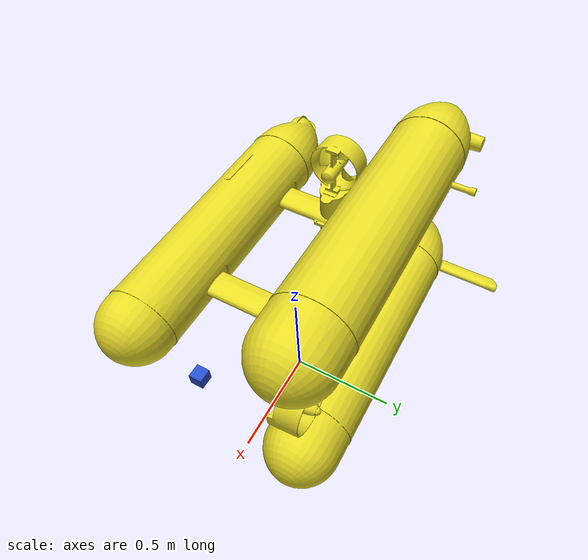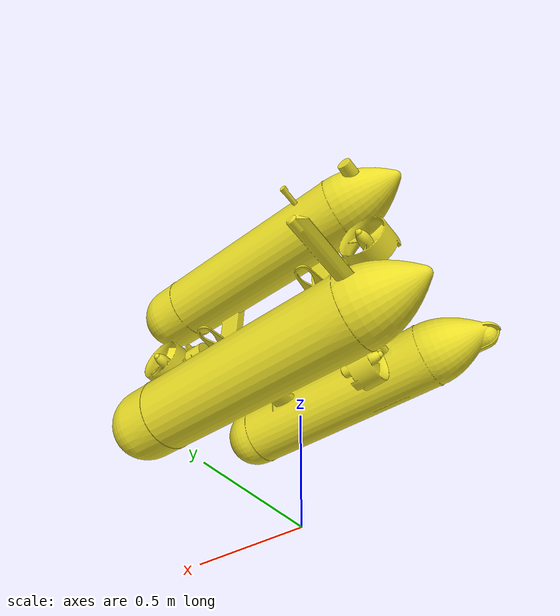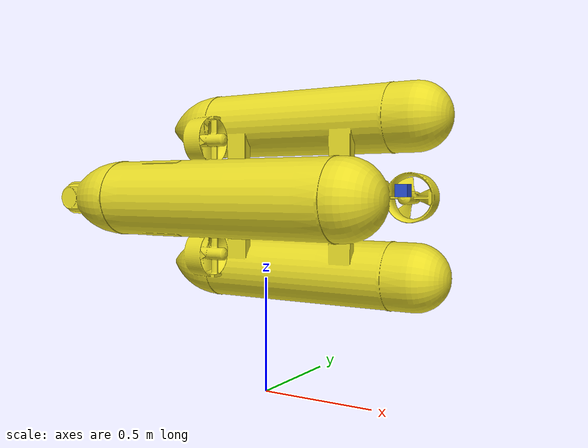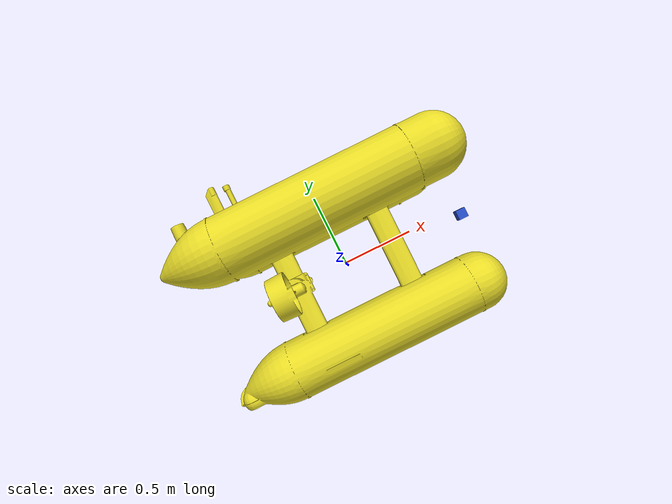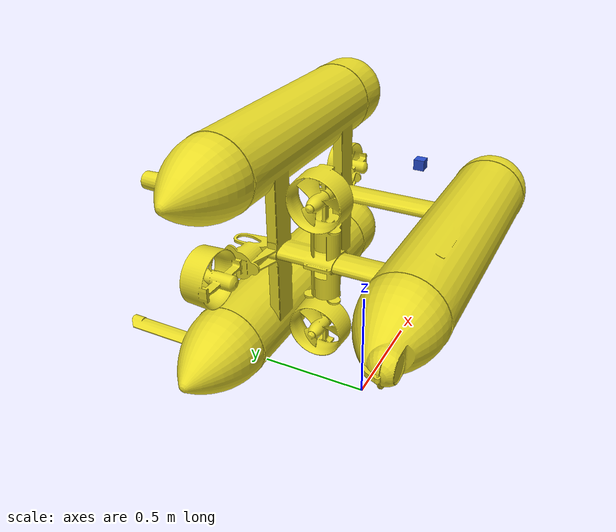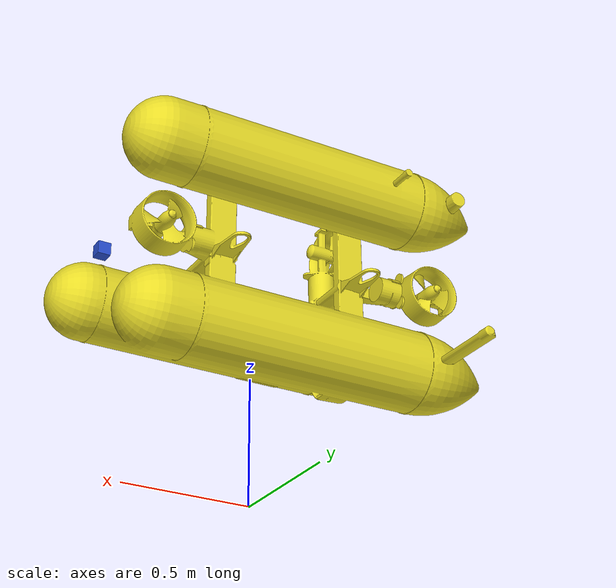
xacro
<?xml version="1.0"?>

<robot name="drone" xmlns:xacro="http://ros.org/wiki/xacro">

	<xacro:include filename="$(find import_duck_gazebo)/urdf/wheel.urdf.xacro" />

  <property name="M_PI" value="3.1415926535897931" />
  <property name="M_PI_2" value="1.570796327" />
  <property name="DEG_TO_RAD" value="0.017453293" />

  <!-- Main body radius and height -->
  <!-- Main Body Cylinder base   -->
  <property name="base_height" value="0.02" />
  <property name="base_radius" value="0.15" />

  <!-- Hokuyo Laser scanner -->
  <property name="hokuyo_size" value="0.05" />

  <!-- Macro for calculating inertia of cylinder -->
  <macro name="cylinder_inertia" params="m r h">
    <inertia  ixx="${m*(3*r*r+h*h)/12}" ixy = "0" ixz = "0"
              iyy="${m*(3*r*r+h*h)/12}" iyz = "0"
              izz="${m*r*r/2}" />
  </macro>

  <link name="base_footprint">
    <inertial>
      <mass value="0.0001" />
      <origin xyz="0 0 0" />
      <inertia ixx="0.0001" ixy="0.0" ixz="0.0"
          iyy="0.0001" iyz="0.0"
          izz="0.0001" />
    </inertial>
    <visual>
        <origin xyz="0 0 0" rpy="0 0 0" />
        <geometry>
            <box size="0.001 0.001 0.001" />
        </geometry>
    </visual>
  </link>

  <gazebo reference="base_footprint">
    <turnGravityOff>false</turnGravityOff>
  </gazebo>

  <joint name="base_footprint_joint" type="fixed">
    <origin xyz="0 0 ${wheel_radius - base_z_origin_to_wheel_origin}" rpy="0 0 0" />
    <parent link="base_footprint"/>
    <child link="drone_link" />
  </joint>

<!-- Girona 500 link -->

	<link name="drone_link">
		<inertial>
			<mass value="2" />
			<origin xyz="0 0 0" />
			<inertia ixx="0.01152" ixy="0.0" ixz="0.0" iyy="0.01152" iyz="0.0" izz="0.0218" />
		</inertial>

		<visual>
			<origin xyz="0 0 0.5" rpy="${M_PI} 0 0" />
			<geometry>
	  		<mesh filename="package://import_duck_gazebo/meshes/girona500.dae"/>
			</geometry>
		</visual>

		<collision>
			<origin xyz="0 0 0" rpy="${M_PI + M_PI/6 - M_PI/36} 0 0" />
			<geometry>
	  			<mesh filename="package://import_duck_gazebo/meshes/girona500.stl"/>
			</geometry>
		</collision>
	</link>

	<gazebo reference="drone_link">
		<material>Gazebo/Yellow</material>
	</gazebo>

	<!-- Sensors -->

  <link name="hokuyo_link">
    <visual>
      <origin xyz="0 0 0" rpy="0 0 0" />
      <geometry>
        <box size="${hokuyo_size} ${hokuyo_size} ${hokuyo_size}"/>
      </geometry>
      <material name="Blue" />
    </visual>
  </link>

  <joint name="hokuyo_joint" type="fixed">
    <origin xyz="${base_radius - hokuyo_size/2 + 0.5} 0 ${base_height+hokuyo_size/4 +0.5}" rpy="0 0 0" />
    <parent link="drone_link"/>
    <child link="hokuyo_link" />
  </joint>

  <gazebo reference="hokuyo_link">
    <material>Gazebo/Blue</material>
    <turnGravityOff>false</turnGravityOff>
    <sensor type="ray" name="head_hokuyo_sensor">
      <pose>${hokuyo_size/2} 0 0 0 0 0</pose>
      <visualize>true</visualize>
      <update_rate>40</update_rate>
      <ray>
        <scan>
          <horizontal>
            <samples>720</samples>
            <resolution>1</resolution>
            <min_angle>-1.570796</min_angle>
            <max_angle>1.570796</max_angle>
          </horizontal>
        </scan>
        <range>
          <min>0.10</min>
          <max>10.0</max>
          <resolution>0.001</resolution>
        </range>
      </ray>
      <plugin name="gazebo_ros_head_hokuyo_controller" filename="libgazebo_ros_laser.so">
        <topicName>/scan</topicName>
        <frameName>hokuyo_link</frameName>
      </plugin>
    </sensor>
  </gazebo>

	<gazebo>
		<plugin name="gazebo_ros_control" filename="lib_gazebo_ros_control">
			<robotNamespace>/drone</robotNamespace>
		</plugin>
	</gazebo>

</robot>

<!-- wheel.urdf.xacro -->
<robot name="wheel" xmlns:xacro="http://www.ros.org/wiki/xacro">

  <!-- Wheels -->
  <property name="wheel_radius" value="0.35" />
  <property name="wheel_height" value="0.01" />
  <property name="wheel_mass" value="2.5" /> <!-- in kg-->

  <property name="base_x_origin_to_wheel_origin" value="0.25" />
  <property name="base_y_origin_to_wheel_origin" value="0.3" />
  <property name="base_z_origin_to_wheel_origin" value="0.0" />

  <macro name="cylinder_inertia" params="m r h">
    <inertia  ixx="${m*(3*r*r+h*h)/12}" ixy = "0" ixz = "0"
              iyy="${m*(3*r*r+h*h)/12}" iyz = "0"
              izz="${m*r*r/2}" />
  </macro>

  <xacro:macro name="wheel" params="fb lr parent translateX translateY flipY"> <!--fb : front, back ; lr: left, right -->
    <link name="${fb}_${lr}_wheel">
      <collision>
        <origin xyz="0 0 0" rpy="${flipY*M_PI/2} 0 0 " />
        <geometry>
          <cylinder length="${wheel_height}" radius="${wheel_radius}" />
        </geometry>
      </collision>
      <inertial>
        <mass value="${wheel_mass}" />
        <origin xyz="0 0 0" />
        <cylinder_inertia  m="${wheel_mass}" r="${wheel_radius}" h="${wheel_height}" />
      </inertial>
    </link>

    <gazebo reference="${fb}_${lr}_wheel">
      <mu1 value="1.0"/>
      <mu2 value="1.0"/>
      <kp  value="10000000.0" />
      <kd  value="1.0" />
      <fdir1 value="1 0 0"/>
      <material>Gazebo/Grey</material>
      <turnGravityOff>false</turnGravityOff>
    </gazebo>

    <joint name="${fb}_${lr}_wheel_joint" type="continuous">
      <parent link="${parent}"/>
      <child link="${fb}_${lr}_wheel"/>
      <origin xyz="${translateX * base_x_origin_to_wheel_origin} ${translateY * base_y_origin_to_wheel_origin} ${base_z_origin_to_wheel_origin}" rpy="0 0 0" />
      <axis xyz="0 1 0" rpy="0  0" />
      <limit effort="100" velocity="100"/>
      <joint_properties damping="0.0" friction="0.0"/>
    </joint>

    <!-- Transmission is important to link the joints and the controller -->
    <transmission name="${fb}_${lr}_wheel_joint_trans">
      <type>transmission_interface/SimpleTransmission</type>
      <joint name="${fb}_${lr}_wheel_joint" />
      <actuator name="${fb}_${lr}_wheel_joint_motor">
        <hardwareInterface>EffortJointInterface</hardwareInterface>
        <mechanicalReduction>1</mechanicalReduction>
      </actuator>
    </transmission>

  </xacro:macro>
</robot>
